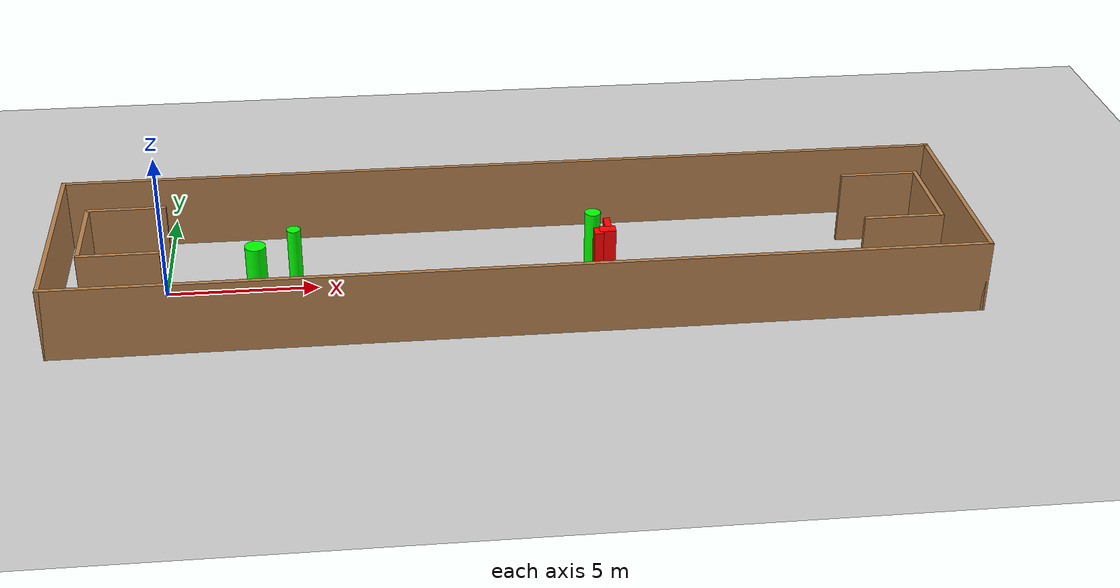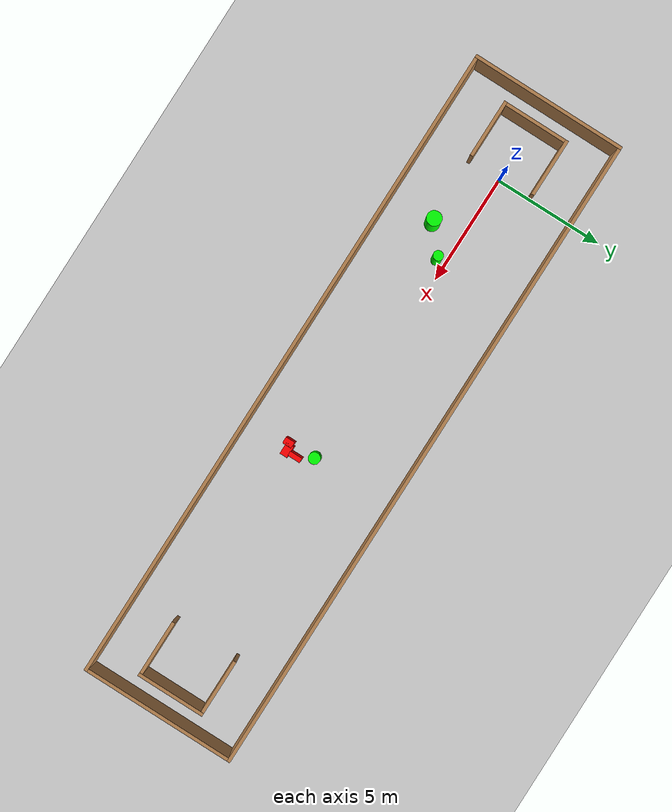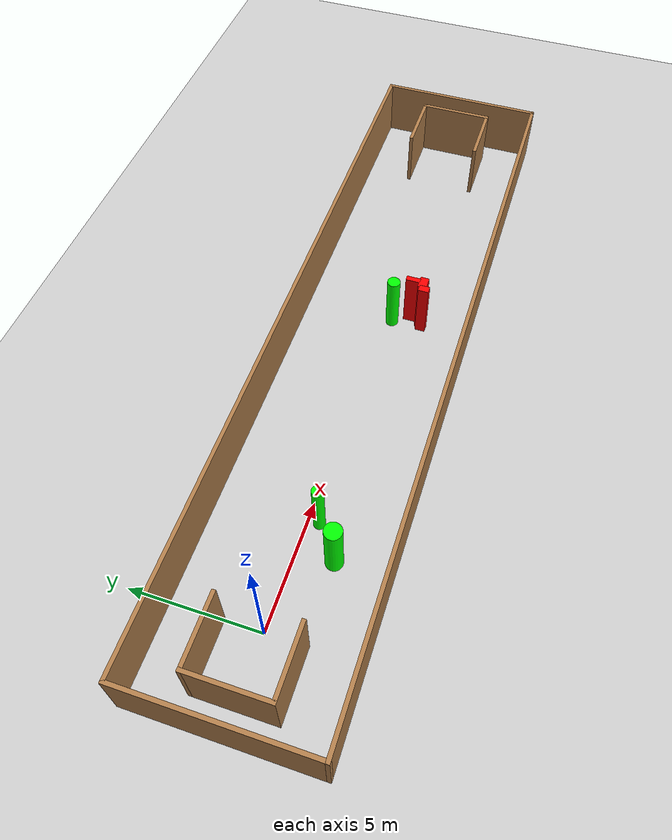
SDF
<sdf version="1.7">
 <world name="default">
  <light name="sun" type="directional">
   <pose>0 0 10 0 -0 0</pose>
   <diffuse>0.8 0.8 0.8 1</diffuse>
   <specular>0.2 0.2 0.2 1</specular>
   <attenuation>
    <range>1000</range>
    <constant>0.9</constant>
    <linear>0.01</linear>
    <quadratic>0.001</quadratic>
   </attenuation>
   <direction>-0.5 0.1 -0.9</direction>
   <spot><inner_angle>0</inner_angle><outer_angle>0</outer_angle><falloff>0</falloff></spot>
  </light>
  <model name="ground_plane">
   <static>1</static>
   <link name="link">
    <collision name="collision">
     <geometry><plane><normal>0 0 1</normal><size>100 100</size></plane></geometry>
     <surface>
      <contact><collide_bitmask>65535</collide_bitmask></contact>
      <friction><ode><mu>100</mu><mu2>50</mu2></ode></friction>
     </surface>
    </collision>
    <visual name="visual">
     <cast_shadows>0</cast_shadows>
     <geometry><plane><normal>0 0 1</normal><size>100 100</size></plane></geometry>
     <material>
      <script><uri>file://media/materials/scripts/gazebo.material</uri><name>Gazebo/Grey</name></script>
     </material>
    </visual>
   </link>
  </model>
  <gravity>0 0 -9.8</gravity>
  <magnetic_field>6e-06 2.3e-05 -4.2e-05</magnetic_field>
  <atmosphere type="adiabatic"/>
  <physics type="ode">
   <max_step_size>0.001</max_step_size>
   <real_time_factor>1</real_time_factor>
   <real_time_update_rate>1000</real_time_update_rate>
  </physics>
  <scene><ambient>0.4 0.4 0.4 1</ambient><background>0.7 0.7 0.7 1</background><shadows>1</shadows></scene>
  <spherical_coordinates>
   <surface_model>EARTH_WGS84</surface_model>
   <latitude_deg>0</latitude_deg>
   <longitude_deg>0</longitude_deg>
   <elevation>0</elevation>
   <heading_deg>0</heading_deg>
  </spherical_coordinates>
  <model name="my_base_walls">
   <link name="Wall_0">
    <collision name="Wall_0_Collision">
     <geometry><box><size>7.15 0.15 2.5</size></box></geometry>
     <pose>0 0 1.25 0 -0 0</pose>
    </collision>
    <visual name="Wall_0_Visual">
     <pose>0 0 1.25 0 -0 0</pose>
     <geometry><box><size>7.15 0.15 2.5</size></box></geometry>
     <material>
      <script><uri>file://media/materials/scripts/gazebo.material</uri><name>Gazebo/Wood</name></script>
      <ambient>1 1 1 1</ambient>
     </material>
     <meta><layer>0</layer></meta>
    </visual>
    <pose>-15 0 0 0 -0 1.5708</pose>
   </link>
   <link name="Wall_10">
    <collision name="Wall_10_Collision">
     <geometry><box><size>2.65 0.15 2.5</size></box></geometry>
     <pose>0 0 1.25 0 -0 0</pose>
    </collision>
    <visual name="Wall_10_Visual">
     <pose>0 0 1.25 0 -0 0</pose>
     <geometry><box><size>2.65 0.15 2.5</size></box></geometry>
     <material>
      <script><uri>file://media/materials/scripts/gazebo.material</uri><name>Gazebo/Wood</name></script>
      <ambient>1 1 1 1</ambient>
     </material>
     <meta><layer>0</layer></meta>
    </visual>
    <pose>-12.75 -1.5 0 0 -0 0</pose>
   </link>
   <link name="Wall_12">
    <collision name="Wall_12_Collision">
     <geometry><box><size>2.65 0.15 2.5</size></box></geometry>
     <pose>0 0 1.25 0 -0 0</pose>
    </collision>
    <visual name="Wall_12_Visual">
     <pose>0 0 1.25 0 -0 0</pose>
     <geometry><box><size>2.65 0.15 2.5</size></box></geometry>
     <material>
      <script><uri>file://media/materials/scripts/gazebo.material</uri><name>Gazebo/Wood</name></script>
      <ambient>1 1 1 1</ambient>
     </material>
     <meta><layer>0</layer></meta>
    </visual>
    <pose>-12.75 1.5 0 0 -0 0</pose>
   </link>
   <link name="Wall_14">
    <collision name="Wall_14_Collision">
     <geometry><box><size>3.15 0.15 2.5</size></box></geometry>
     <pose>0 0 1.25 0 -0 0</pose>
    </collision>
    <visual name="Wall_14_Visual">
     <pose>0 0 1.25 0 -0 0</pose>
     <geometry><box><size>3.15 0.15 2.5</size></box></geometry>
     <material>
      <script><uri>file://media/materials/scripts/gazebo.material</uri><name>Gazebo/Wood</name></script>
      <ambient>1 1 1 1</ambient>
     </material>
     <meta><layer>0</layer></meta>
    </visual>
    <pose>14 0 0 0 -0 -1.5708</pose>
   </link>
   <link name="Wall_15">
    <collision name="Wall_15_Collision">
     <geometry><box><size>2.65 0.15 2.5</size></box></geometry>
     <pose>0 0 1.25 0 -0 0</pose>
    </collision>
    <visual name="Wall_15_Visual">
     <pose>0 0 1.25 0 -0 0</pose>
     <geometry><box><size>2.65 0.15 2.5</size></box></geometry>
     <material>
      <script><uri>file://media/materials/scripts/gazebo.material</uri><name>Gazebo/Wood</name></script>
      <ambient>1 1 1 1</ambient>
     </material>
     <meta><layer>0</layer></meta>
    </visual>
    <pose>12.75 -1.5 0 0 -0 3.14159</pose>
   </link>
   <link name="Wall_17">
    <collision name="Wall_17_Collision">
     <geometry><box><size>2.65 0.15 2.5</size></box></geometry>
     <pose>0 0 1.25 0 -0 0</pose>
    </collision>
    <visual name="Wall_17_Visual">
     <pose>0 0 1.25 0 -0 0</pose>
     <geometry><box><size>2.65 0.15 2.5</size></box></geometry>
     <material>
      <script><uri>file://media/materials/scripts/gazebo.material</uri><name>Gazebo/Wood</name></script>
      <ambient>1 1 1 1</ambient>
     </material>
     <meta><layer>0</layer></meta>
    </visual>
    <pose>12.75 1.5 0 0 -0 3.14159</pose>
   </link>
   <link name="Wall_2">
    <collision name="Wall_2_Collision">
     <geometry><box><size>30.15 0.15 2.5</size></box></geometry>
     <pose>0 0 1.25 0 -0 0</pose>
    </collision>
    <visual name="Wall_2_Visual">
     <pose>0 0 1.25 0 -0 0</pose>
     <geometry><box><size>30.15 0.15 2.5</size></box></geometry>
     <material>
      <script><uri>file://media/materials/scripts/gazebo.material</uri><name>Gazebo/Wood</name></script>
      <ambient>1 1 1 1</ambient>
     </material>
     <meta><layer>0</layer></meta>
    </visual>
    <pose>-0 -3.5 0 0 -0 0</pose>
   </link>
   <link name="Wall_4">
    <collision name="Wall_4_Collision">
     <geometry><box><size>30.15 0.15 2.5</size></box></geometry>
     <pose>0 0 1.25 0 -0 0</pose>
    </collision>
    <visual name="Wall_4_Visual">
     <pose>0 0 1.25 0 -0 0</pose>
     <geometry><box><size>30.15 0.15 2.5</size></box></geometry>
     <material>
      <script><uri>file://media/materials/scripts/gazebo.material</uri><name>Gazebo/Wood</name></script>
      <ambient>1 1 1 1</ambient>
     </material>
     <meta><layer>0</layer></meta>
    </visual>
    <pose>-0 3.5 0 0 -0 0</pose>
   </link>
   <link name="Wall_6">
    <collision name="Wall_6_Collision">
     <geometry><box><size>7.15 0.15 2.5</size></box></geometry>
     <pose>0 0 1.25 0 -0 0</pose>
    </collision>
    <visual name="Wall_6_Visual">
     <pose>0 0 1.25 0 -0 0</pose>
     <geometry><box><size>7.15 0.15 2.5</size></box></geometry>
     <material>
      <script><uri>file://media/materials/scripts/gazebo.material</uri><name>Gazebo/Wood</name></script>
      <ambient>1 1 1 1</ambient>
     </material>
     <meta><layer>0</layer></meta>
    </visual>
    <pose>15 0 0 0 -0 -1.5708</pose>
   </link>
   <link name="Wall_9">
    <collision name="Wall_9_Collision">
     <geometry><box><size>3.15 0.15 2.5</size></box></geometry>
     <pose>0 0 1.25 0 -0 0</pose>
    </collision>
    <visual name="Wall_9_Visual">
     <pose>0 0 1.25 0 -0 0</pose>
     <geometry><box><size>3.15 0.15 2.5</size></box></geometry>
     <material>
      <script><uri>file://media/materials/scripts/gazebo.material</uri><name>Gazebo/Wood</name></script>
      <ambient>1 1 1 1</ambient>
     </material>
     <meta><layer>0</layer></meta>
    </visual>
    <pose>-14 0 0 0 -0 -1.5708</pose>
   </link>
   <static>1</static>
   <pose>11.5 0 0 0 -0 0</pose>
  </model>
  <model name="cylinder1">
   <static>1</static>
   <link name="link">
    <inertial>
     <mass>1</mass>
     <inertia><ixx>0.5</ixx><ixy>0</ixy><ixz>0</ixz><iyy>0.5</iyy><iyz>0</iyz><izz>1</izz></inertia>
    </inertial>
    <collision name="collision">
     <geometry><cylinder><radius>0.26015046473399944</radius><length>2.5</length></cylinder></geometry>
    </collision>
    <visual name="visual">
     <geometry><cylinder><radius>0.26015046473399944</radius><length>2.5</length></cylinder></geometry>
     <material>
      <ambient>0 1 0 1</ambient>
      <diffuse>0 1 0 1</diffuse>
      <specular>0.1 0.1 0.1 1</specular>
      <emissive>0 0 0 0</emissive>
     </material>
    </visual>
   </link>
   <pose>14.094210568368593 -0.24700357441038 1.25 0 0 0</pose>
  </model>
  <model name="cylinder2">
   <static>1</static>
   <link name="link">
    <inertial>
     <mass>1</mass>
     <inertia><ixx>0.5</ixx><ixy>0</ixy><ixz>0</ixz><iyy>0.5</iyy><iyz>0</iyz><izz>1</izz></inertia>
    </inertial>
    <collision name="collision">
     <geometry><cylinder><radius>0.22320242936277973</radius><length>2.5</length></cylinder></geometry>
    </collision>
    <visual name="visual">
     <geometry><cylinder><radius>0.22320242936277973</radius><length>2.5</length></cylinder></geometry>
     <material>
      <ambient>0 1 0 1</ambient>
      <diffuse>0 1 0 1</diffuse>
      <specular>0.1 0.1 0.1 1</specular>
      <emissive>0 0 0 0</emissive>
     </material>
    </visual>
   </link>
   <pose>4.291279324614093 -0.4356015626278058 1.25 0 0 0</pose>
  </model>
  <model name="cylinder3">
   <static>1</static>
   <link name="link">
    <inertial>
     <mass>1</mass>
     <inertia><ixx>0.5</ixx><ixy>0</ixy><ixz>0</ixz><iyy>0.5</iyy><iyz>0</iyz><izz>1</izz></inertia>
    </inertial>
    <collision name="collision">
     <geometry><cylinder><radius>0.334237456978927</radius><length>2.5</length></cylinder></geometry>
    </collision>
    <visual name="visual">
     <geometry><cylinder><radius>0.334237456978927</radius><length>2.5</length></cylinder></geometry>
     <material>
      <ambient>0 1 0 1</ambient>
      <diffuse>0 1 0 1</diffuse>
      <specular>0.1 0.1 0.1 1</specular>
      <emissive>0 0 0 0</emissive>
     </material>
    </visual>
   </link>
   <pose>3.080051672166169 -1.4022561424402467 1.25 0 0 0</pose>
  </model>
  <model name="box1">
   <static>1</static>
   <link name="link">
    <inertial>
     <mass>1</mass>
     <inertia><ixx>0.083</ixx><ixy>0</ixy><ixz>0</ixz><iyy>0.083</iyy><iyz>0</iyz><izz>0.083</izz></inertia>
    </inertial>
    <collision name="collision">
     <geometry><box><size>0.29116693067733534 0.4187703765859405 2.5</size></box></geometry>
    </collision>
    <visual name="visual">
     <geometry><box><size>0.29116693067733534 0.4187703765859405 2.5</size></box></geometry>
     <material>
      <ambient>1 0 0 1</ambient>
      <diffuse>1 0 0 1</diffuse>
      <specular>0.1 0.1 0.1 1</specular>
      <emissive>0 0 0 0</emissive>
     </material>
    </visual>
    <sensor name="my_contact" type="contact">
     <contact><collision>box_collision</collision><topic>__default_topic__</topic></contact>
    </sensor>
   </link>
   <pose>14.115823428128934 -1.4938042591443965 1.25 0 0 0</pose>
  </model>
  <model name="box2">
   <static>1</static>
   <link name="link">
    <inertial>
     <mass>1</mass>
     <inertia><ixx>0.083</ixx><ixy>0</ixy><ixz>0</ixz><iyy>0.083</iyy><iyz>0</iyz><izz>0.083</izz></inertia>
    </inertial>
    <collision name="collision">
     <geometry><box><size>0.21616359115863015 0.5762908509213256 2.5</size></box></geometry>
    </collision>
    <visual name="visual">
     <geometry><box><size>0.21616359115863015 0.5762908509213256 2.5</size></box></geometry>
     <material>
      <ambient>1 0 0 1</ambient>
      <diffuse>1 0 0 1</diffuse>
      <specular>0.1 0.1 0.1 1</specular>
      <emissive>0 0 0 0</emissive>
     </material>
    </visual>
    <sensor name="my_contact" type="contact">
     <contact><collision>box_collision</collision><topic>__default_topic__</topic></contact>
    </sensor>
   </link>
   <pose>14.475987069008713 -0.9547630412950001 1.25 0 0 0</pose>
  </model>
  <model name="box3">
   <static>1</static>
   <link name="link">
    <inertial>
     <mass>1</mass>
     <inertia><ixx>0.083</ixx><ixy>0</ixy><ixz>0</ixz><iyy>0.083</iyy><iyz>0</iyz><izz>0.083</izz></inertia>
    </inertial>
    <collision name="collision">
     <geometry><box><size>0.5327297744620412 0.3501123328102295 2.5</size></box></geometry>
    </collision>
    <visual name="visual">
     <geometry><box><size>0.5327297744620412 0.3501123328102295 2.5</size></box></geometry>
     <material>
      <ambient>1 0 0 1</ambient>
      <diffuse>1 0 0 1</diffuse>
      <specular>0.1 0.1 0.1 1</specular>
      <emissive>0 0 0 0</emissive>
     </material>
    </visual>
    <sensor name="my_contact" type="contact">
     <contact><collision>box_collision</collision><topic>__default_topic__</topic></contact>
    </sensor>
   </link>
   <pose>14.420840676569085 -1.3881494770201859 1.25 0 0 0</pose>
  </model>
 </world>
</sdf>
